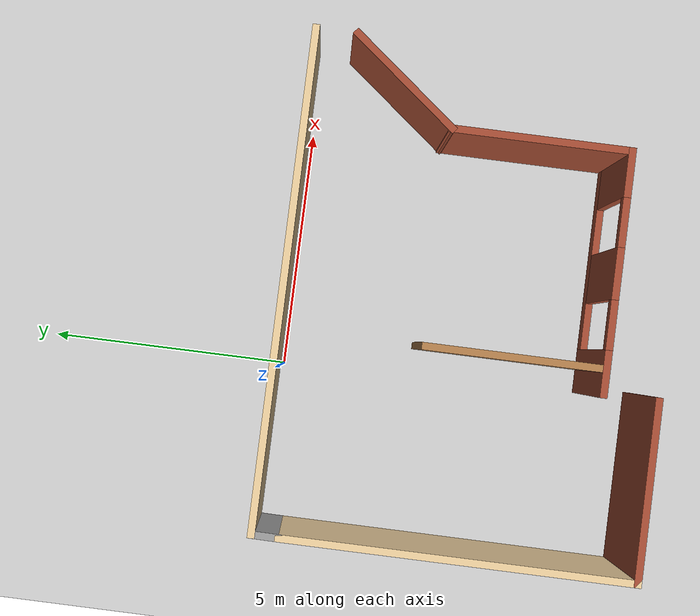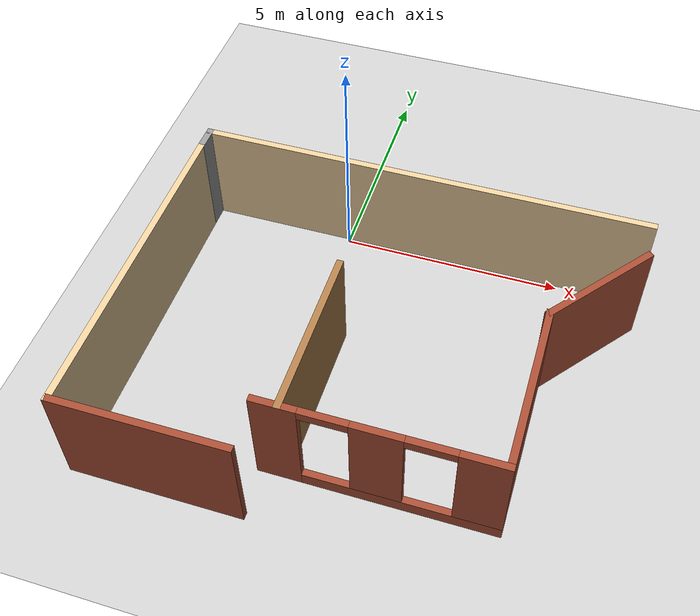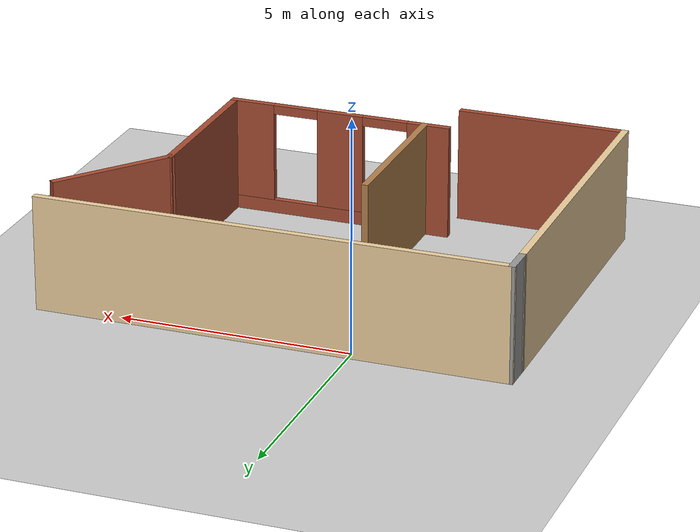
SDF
<sdf version="1.6">
 <world name="default">
  <model name="ground_plane">
   <static>1</static>
   <link name="link">
    <collision name="collision">
     <geometry><plane><normal>0 0 1</normal><size>100 100</size></plane></geometry>
     <surface><friction><ode><mu>100</mu><mu2>50</mu2></ode></friction></surface>
    </collision>
    <visual name="visual">
     <cast_shadows>0</cast_shadows>
     <geometry><plane><normal>0 0 1</normal><size>100 100</size></plane></geometry>
     <material>
      <script><uri>file://media/materials/scripts/gazebo.material</uri><name>Gazebo/Grey</name></script>
     </material>
    </visual>
   </link>
  </model>
  <model name="Number26">
   <link name="Wall_13">
    <pose>-5.06482 3.54964 0 0 -0 1.56115</pose>
    <visual name="Wall_13_Visual">
     <pose>0 0 1.25 0 -0 0</pose>
     <geometry><box><size>0.692161 0.15 2.5</size></box></geometry>
     <material>
      <script><uri>file://media/materials/scripts/gazebo.material</uri><name>Gazebo/Grey</name></script>
      <ambient>1 1 1 1</ambient>
      <shader type="pixel"/>
      <diffuse>0.7 0.7 0.7 1</diffuse>
      <specular>0.01 0.01 0.01 1</specular>
      <emissive>0 0 0 1</emissive>
     </material>
     <meta><layer>0</layer></meta>
    </visual>
    <collision name="Wall_13_Collision">
     <pose>0 0 1.25 0 -0 0</pose>
     <geometry><box><size>0.692161 0.15 2.5</size></box></geometry>
     <surface>
      <friction>
       <ode><mu>1</mu><mu2>1</mu2><fdir1>0 0 0</fdir1><slip1>0</slip1><slip2>0</slip2></ode>
       <torsional>
        <coefficient>1</coefficient>
        <patch_radius>0</patch_radius>
        <surface_radius>0</surface_radius>
        <use_patch_radius>1</use_patch_radius>
        <ode><slip>0</slip></ode>
       </torsional>
      </friction>
      <bounce><restitution_coefficient>0</restitution_coefficient><threshold>1e+06</threshold></bounce>
      <contact>
       <collide_without_contact>0</collide_without_contact>
       <collide_without_contact_bitmask>1</collide_without_contact_bitmask>
       <collide_bitmask>1</collide_bitmask>
       <ode>
        <soft_cfm>0</soft_cfm>
        <soft_erp>0.2</soft_erp>
        <kp>1e+13</kp>
        <kd>1</kd>
        <max_vel>0.01</max_vel>
        <min_depth>0</min_depth>
       </ode>
       <bullet>
        <split_impulse>1</split_impulse>
        <split_impulse_penetration_threshold>-0.01</split_impulse_penetration_threshold>
        <soft_cfm>0</soft_cfm>
        <soft_erp>0.2</soft_erp>
        <kp>1e+13</kp>
        <kd>1</kd>
       </bullet>
      </contact>
     </surface>
    </collision>
   </link>
   <link name="Wall_2">
    <pose>-5.06743 -0.271428 0 0 0 -1.5708</pose>
    <visual name="Wall_2_Visual">
     <pose>0 0 1.25 0 -0 0</pose>
     <geometry><box><size>7.25 0.15 2.5</size></box></geometry>
     <material>
      <script><uri>file://media/materials/scripts/gazebo.material</uri><name>Gazebo/Grey</name></script>
      <ambient>0.921569 0.807843 0.615686 1</ambient>
      <shader type="pixel"/>
      <diffuse>0.7 0.7 0.7 1</diffuse>
      <specular>0.01 0.01 0.01 1</specular>
      <emissive>0 0 0 1</emissive>
     </material>
     <meta><layer>0</layer></meta>
    </visual>
    <collision name="Wall_2_Collision">
     <pose>0 0 1.25 0 -0 0</pose>
     <geometry><box><size>7.25 0.15 2.5</size></box></geometry>
     <surface>
      <friction>
       <ode><mu>1</mu><mu2>1</mu2><fdir1>0 0 0</fdir1><slip1>0</slip1><slip2>0</slip2></ode>
       <torsional>
        <coefficient>1</coefficient>
        <patch_radius>0</patch_radius>
        <surface_radius>0</surface_radius>
        <use_patch_radius>1</use_patch_radius>
        <ode><slip>0</slip></ode>
       </torsional>
      </friction>
      <bounce><restitution_coefficient>0</restitution_coefficient><threshold>1e+06</threshold></bounce>
      <contact>
       <collide_without_contact>0</collide_without_contact>
       <collide_without_contact_bitmask>1</collide_without_contact_bitmask>
       <collide_bitmask>1</collide_bitmask>
       <ode>
        <soft_cfm>0</soft_cfm>
        <soft_erp>0.2</soft_erp>
        <kp>1e+13</kp>
        <kd>1</kd>
        <max_vel>0.01</max_vel>
        <min_depth>0</min_depth>
       </ode>
       <bullet>
        <split_impulse>1</split_impulse>
        <split_impulse_penetration_threshold>-0.01</split_impulse_penetration_threshold>
        <soft_cfm>0</soft_cfm>
        <soft_erp>0.2</soft_erp>
        <kp>1e+13</kp>
        <kd>1</kd>
       </bullet>
      </contact>
     </surface>
    </collision>
   </link>
   <link name="Wall_20">
    <pose>-0.96743 -0.921428 0 0 0 -1.5708</pose>
    <visual name="Wall_20_Visual">
     <pose>0 0 1.25 0 -0 0</pose>
     <geometry><box><size>3.75 0.15 2.5</size></box></geometry>
     <material>
      <script><uri>file://media/materials/scripts/gazebo.material</uri><name>Gazebo/Wood</name></script>
      <ambient>0.921569 0.807843 0.615686 1</ambient>
      <shader type="pixel"/>
      <diffuse>1 1 1 1</diffuse>
      <specular>0.2 0.2 0.2 1</specular>
      <emissive>0 0 0 1</emissive>
     </material>
     <meta><layer>0</layer></meta>
    </visual>
    <collision name="Wall_20_Collision">
     <pose>0 0 1.25 0 -0 0</pose>
     <geometry><box><size>3.75 0.15 2.5</size></box></geometry>
     <surface>
      <friction>
       <ode><mu>1</mu><mu2>1</mu2><fdir1>0 0 0</fdir1><slip1>0</slip1><slip2>0</slip2></ode>
       <torsional>
        <coefficient>1</coefficient>
        <patch_radius>0</patch_radius>
        <surface_radius>0</surface_radius>
        <use_patch_radius>1</use_patch_radius>
        <ode><slip>0</slip></ode>
       </torsional>
      </friction>
      <bounce><restitution_coefficient>0</restitution_coefficient><threshold>1e+06</threshold></bounce>
      <contact>
       <collide_without_contact>0</collide_without_contact>
       <collide_without_contact_bitmask>1</collide_without_contact_bitmask>
       <collide_bitmask>1</collide_bitmask>
       <ode>
        <soft_cfm>0</soft_cfm>
        <soft_erp>0.2</soft_erp>
        <kp>1e+13</kp>
        <kd>1</kd>
        <max_vel>0.01</max_vel>
        <min_depth>0</min_depth>
       </ode>
       <bullet>
        <split_impulse>1</split_impulse>
        <split_impulse_penetration_threshold>-0.01</split_impulse_penetration_threshold>
        <soft_cfm>0</soft_cfm>
        <soft_erp>0.2</soft_erp>
        <kp>1e+13</kp>
        <kd>1</kd>
       </bullet>
      </contact>
     </surface>
    </collision>
   </link>
   <link name="Wall_3">
    <pose>-3.26743 -3.82143 0 0 -0 0</pose>
    <visual name="Wall_3_Visual">
     <pose>0 0 1.25 0 -0 0</pose>
     <geometry><box><size>3.75 0.15 2.5</size></box></geometry>
     <material>
      <script><uri>file://media/materials/scripts/gazebo.material</uri><name>Gazebo/Bricks</name></script>
      <ambient>1 1 1 1</ambient>
      <shader type="pixel"/>
      <diffuse>1 1 1 1</diffuse>
      <specular>0.2 0.2 0.2 1</specular>
      <emissive>0 0 0 1</emissive>
     </material>
     <meta><layer>0</layer></meta>
    </visual>
    <collision name="Wall_3_Collision">
     <pose>0 0 1.25 0 -0 0</pose>
     <geometry><box><size>3.75 0.15 2.5</size></box></geometry>
     <surface>
      <friction>
       <ode><mu>1</mu><mu2>1</mu2><fdir1>0 0 0</fdir1><slip1>0</slip1><slip2>0</slip2></ode>
       <torsional>
        <coefficient>1</coefficient>
        <patch_radius>0</patch_radius>
        <surface_radius>0</surface_radius>
        <use_patch_radius>1</use_patch_radius>
        <ode><slip>0</slip></ode>
       </torsional>
      </friction>
      <bounce><restitution_coefficient>0</restitution_coefficient><threshold>1e+06</threshold></bounce>
      <contact>
       <collide_without_contact>0</collide_without_contact>
       <collide_without_contact_bitmask>1</collide_without_contact_bitmask>
       <collide_bitmask>1</collide_bitmask>
       <ode>
        <soft_cfm>0</soft_cfm>
        <soft_erp>0.2</soft_erp>
        <kp>1e+13</kp>
        <kd>1</kd>
        <max_vel>0.01</max_vel>
        <min_depth>0</min_depth>
       </ode>
       <bullet>
        <split_impulse>1</split_impulse>
        <split_impulse_penetration_threshold>-0.01</split_impulse_penetration_threshold>
        <soft_cfm>0</soft_cfm>
        <soft_erp>0.2</soft_erp>
        <kp>1e+13</kp>
        <kd>1</kd>
       </bullet>
      </contact>
     </surface>
    </collision>
   </link>
   <link name="Wall_5">
    <pose>0.95757 -2.72143 0 0 -0 0</pose>
    <visual name="Wall_5_Visual_0">
     <pose>-2.02406 0 1.25 0 -0 0</pose>
     <geometry><box><size>0.951877 0.15 2.5</size></box></geometry>
     <material>
      <script><uri>file://media/materials/scripts/gazebo.material</uri><name>Gazebo/Bricks</name></script>
      <ambient>1 1 1 1</ambient>
      <shader type="pixel"/>
      <diffuse>1 1 1 1</diffuse>
      <specular>0.2 0.2 0.2 1</specular>
      <emissive>0 0 0 1</emissive>
     </material>
     <meta><layer>0</layer></meta>
    </visual>
    <visual name="Wall_5_Visual_1">
     <pose>0.475938 0 0.15 0 -0 0</pose>
     <geometry><box><size>4.04812 0.15 0.3</size></box></geometry>
     <material>
      <script><uri>file://media/materials/scripts/gazebo.material</uri><name>Gazebo/Bricks</name></script>
      <ambient>1 1 1 1</ambient>
      <shader type="pixel"/>
      <diffuse>1 1 1 1</diffuse>
      <specular>0.2 0.2 0.2 1</specular>
      <emissive>0 0 0 1</emissive>
     </material>
     <meta><layer>0</layer></meta>
    </visual>
    <visual name="Wall_5_Visual_2">
     <pose>-0.024954 0 1.4 0 -0 0</pose>
     <geometry><box><size>1.04634 0.15 2.2</size></box></geometry>
     <material>
      <script><uri>file://media/materials/scripts/gazebo.material</uri><name>Gazebo/Bricks</name></script>
      <ambient>1 1 1 1</ambient>
      <shader type="pixel"/>
      <diffuse>1 1 1 1</diffuse>
      <specular>0.2 0.2 0.2 1</specular>
      <emissive>0 0 0 1</emissive>
     </material>
     <meta><layer>0</layer></meta>
    </visual>
    <visual name="Wall_5_Visual_3">
     <pose>1.99911 0 1.4 0 -0 0</pose>
     <geometry><box><size>1.00179 0.15 2.2</size></box></geometry>
     <material>
      <script><uri>file://media/materials/scripts/gazebo.material</uri><name>Gazebo/Bricks</name></script>
      <ambient>1 1 1 1</ambient>
      <shader type="pixel"/>
      <diffuse>1 1 1 1</diffuse>
      <specular>0.2 0.2 0.2 1</specular>
      <emissive>0 0 0 1</emissive>
     </material>
     <meta><layer>0</layer></meta>
    </visual>
    <visual name="Wall_5_Visual_4">
     <pose>-1.04812 0 2.4 0 -0 0</pose>
     <geometry><box><size>1 0.15 0.2</size></box></geometry>
     <material>
      <script><uri>file://media/materials/scripts/gazebo.material</uri><name>Gazebo/Bricks</name></script>
      <ambient>1 1 1 1</ambient>
      <shader type="pixel"/>
      <diffuse>1 1 1 1</diffuse>
      <specular>0.2 0.2 0.2 1</specular>
      <emissive>0 0 0 1</emissive>
     </material>
     <meta><layer>0</layer></meta>
    </visual>
    <visual name="Wall_5_Visual_5">
     <pose>0.998214 0 2.4 0 -0 0</pose>
     <geometry><box><size>1 0.15 0.2</size></box></geometry>
     <material>
      <script><uri>file://media/materials/scripts/gazebo.material</uri><name>Gazebo/Bricks</name></script>
      <ambient>1 1 1 1</ambient>
      <shader type="pixel"/>
      <diffuse>1 1 1 1</diffuse>
      <specular>0.2 0.2 0.2 1</specular>
      <emissive>0 0 0 1</emissive>
     </material>
     <meta><layer>0</layer></meta>
    </visual>
    <collision name="Wall_5_Collision_0">
     <pose>-2.02406 0 1.25 0 -0 0</pose>
     <geometry><box><size>0.951877 0.15 2.5</size></box></geometry>
     <surface>
      <friction>
       <ode><mu>1</mu><mu2>1</mu2><fdir1>0 0 0</fdir1><slip1>0</slip1><slip2>0</slip2></ode>
       <torsional>
        <coefficient>1</coefficient>
        <patch_radius>0</patch_radius>
        <surface_radius>0</surface_radius>
        <use_patch_radius>1</use_patch_radius>
        <ode><slip>0</slip></ode>
       </torsional>
      </friction>
      <bounce><restitution_coefficient>0</restitution_coefficient><threshold>1e+06</threshold></bounce>
      <contact>
       <collide_without_contact>0</collide_without_contact>
       <collide_without_contact_bitmask>1</collide_without_contact_bitmask>
       <collide_bitmask>1</collide_bitmask>
       <ode>
        <soft_cfm>0</soft_cfm>
        <soft_erp>0.2</soft_erp>
        <kp>1e+13</kp>
        <kd>1</kd>
        <max_vel>0.01</max_vel>
        <min_depth>0</min_depth>
       </ode>
       <bullet>
        <split_impulse>1</split_impulse>
        <split_impulse_penetration_threshold>-0.01</split_impulse_penetration_threshold>
        <soft_cfm>0</soft_cfm>
        <soft_erp>0.2</soft_erp>
        <kp>1e+13</kp>
        <kd>1</kd>
       </bullet>
      </contact>
     </surface>
    </collision>
    <collision name="Wall_5_Collision_1">
     <pose>0.475938 0 0.15 0 -0 0</pose>
     <geometry><box><size>4.04812 0.15 0.3</size></box></geometry>
     <surface>
      <friction>
       <ode><mu>1</mu><mu2>1</mu2><fdir1>0 0 0</fdir1><slip1>0</slip1><slip2>0</slip2></ode>
       <torsional>
        <coefficient>1</coefficient>
        <patch_radius>0</patch_radius>
        <surface_radius>0</surface_radius>
        <use_patch_radius>1</use_patch_radius>
        <ode><slip>0</slip></ode>
       </torsional>
      </friction>
      <bounce><restitution_coefficient>0</restitution_coefficient><threshold>1e+06</threshold></bounce>
      <contact>
       <collide_without_contact>0</collide_without_contact>
       <collide_without_contact_bitmask>1</collide_without_contact_bitmask>
       <collide_bitmask>1</collide_bitmask>
       <ode>
        <soft_cfm>0</soft_cfm>
        <soft_erp>0.2</soft_erp>
        <kp>1e+13</kp>
        <kd>1</kd>
        <max_vel>0.01</max_vel>
        <min_depth>0</min_depth>
       </ode>
       <bullet>
        <split_impulse>1</split_impulse>
        <split_impulse_penetration_threshold>-0.01</split_impulse_penetration_threshold>
        <soft_cfm>0</soft_cfm>
        <soft_erp>0.2</soft_erp>
        <kp>1e+13</kp>
        <kd>1</kd>
       </bullet>
      </contact>
     </surface>
    </collision>
    <collision name="Wall_5_Collision_2">
     <pose>-0.024954 0 1.4 0 -0 0</pose>
     <geometry><box><size>1.04634 0.15 2.2</size></box></geometry>
     <surface>
      <friction>
       <ode><mu>1</mu><mu2>1</mu2><fdir1>0 0 0</fdir1><slip1>0</slip1><slip2>0</slip2></ode>
       <torsional>
        <coefficient>1</coefficient>
        <patch_radius>0</patch_radius>
        <surface_radius>0</surface_radius>
        <use_patch_radius>1</use_patch_radius>
        <ode><slip>0</slip></ode>
       </torsional>
      </friction>
      <bounce><restitution_coefficient>0</restitution_coefficient><threshold>1e+06</threshold></bounce>
      <contact>
       <collide_without_contact>0</collide_without_contact>
       <collide_without_contact_bitmask>1</collide_without_contact_bitmask>
       <collide_bitmask>1</collide_bitmask>
       <ode>
        <soft_cfm>0</soft_cfm>
        <soft_erp>0.2</soft_erp>
        <kp>1e+13</kp>
        <kd>1</kd>
        <max_vel>0.01</max_vel>
        <min_depth>0</min_depth>
       </ode>
       <bullet>
        <split_impulse>1</split_impulse>
        <split_impulse_penetration_threshold>-0.01</split_impulse_penetration_threshold>
        <soft_cfm>0</soft_cfm>
        <soft_erp>0.2</soft_erp>
        <kp>1e+13</kp>
        <kd>1</kd>
       </bullet>
      </contact>
     </surface>
    </collision>
    <collision name="Wall_5_Collision_3">
     <pose>1.99911 0 1.4 0 -0 0</pose>
     <geometry><box><size>1.00179 0.15 2.2</size></box></geometry>
     <surface>
      <friction>
       <ode><mu>1</mu><mu2>1</mu2><fdir1>0 0 0</fdir1><slip1>0</slip1><slip2>0</slip2></ode>
       <torsional>
        <coefficient>1</coefficient>
        <patch_radius>0</patch_radius>
        <surface_radius>0</surface_radius>
        <use_patch_radius>1</use_patch_radius>
        <ode><slip>0</slip></ode>
       </torsional>
      </friction>
      <bounce><restitution_coefficient>0</restitution_coefficient><threshold>1e+06</threshold></bounce>
      <contact>
       <collide_without_contact>0</collide_without_contact>
       <collide_without_contact_bitmask>1</collide_without_contact_bitmask>
       <collide_bitmask>1</collide_bitmask>
       <ode>
        <soft_cfm>0</soft_cfm>
        <soft_erp>0.2</soft_erp>
        <kp>1e+13</kp>
        <kd>1</kd>
        <max_vel>0.01</max_vel>
        <min_depth>0</min_depth>
       </ode>
       <bullet>
        <split_impulse>1</split_impulse>
        <split_impulse_penetration_threshold>-0.01</split_impulse_penetration_threshold>
        <soft_cfm>0</soft_cfm>
        <soft_erp>0.2</soft_erp>
        <kp>1e+13</kp>
        <kd>1</kd>
       </bullet>
      </contact>
     </surface>
    </collision>
    <collision name="Wall_5_Collision_4">
     <pose>-1.04812 0 2.4 0 -0 0</pose>
     <geometry><box><size>1 0.15 0.2</size></box></geometry>
     <surface>
      <friction>
       <ode><mu>1</mu><mu2>1</mu2><fdir1>0 0 0</fdir1><slip1>0</slip1><slip2>0</slip2></ode>
       <torsional>
        <coefficient>1</coefficient>
        <patch_radius>0</patch_radius>
        <surface_radius>0</surface_radius>
        <use_patch_radius>1</use_patch_radius>
        <ode><slip>0</slip></ode>
       </torsional>
      </friction>
      <bounce><restitution_coefficient>0</restitution_coefficient><threshold>1e+06</threshold></bounce>
      <contact>
       <collide_without_contact>0</collide_without_contact>
       <collide_without_contact_bitmask>1</collide_without_contact_bitmask>
       <collide_bitmask>1</collide_bitmask>
       <ode>
        <soft_cfm>0</soft_cfm>
        <soft_erp>0.2</soft_erp>
        <kp>1e+13</kp>
        <kd>1</kd>
        <max_vel>0.01</max_vel>
        <min_depth>0</min_depth>
       </ode>
       <bullet>
        <split_impulse>1</split_impulse>
        <split_impulse_penetration_threshold>-0.01</split_impulse_penetration_threshold>
        <soft_cfm>0</soft_cfm>
        <soft_erp>0.2</soft_erp>
        <kp>1e+13</kp>
        <kd>1</kd>
       </bullet>
      </contact>
     </surface>
    </collision>
    <collision name="Wall_5_Collision_5">
     <pose>0.998214 0 2.4 0 -0 0</pose>
     <geometry><box><size>1 0.15 0.2</size></box></geometry>
     <surface>
      <friction>
       <ode><mu>1</mu><mu2>1</mu2><fdir1>0 0 0</fdir1><slip1>0</slip1><slip2>0</slip2></ode>
       <torsional>
        <coefficient>1</coefficient>
        <patch_radius>0</patch_radius>
        <surface_radius>0</surface_radius>
        <use_patch_radius>1</use_patch_radius>
        <ode><slip>0</slip></ode>
       </torsional>
      </friction>
      <bounce><restitution_coefficient>0</restitution_coefficient><threshold>1e+06</threshold></bounce>
      <contact>
       <collide_without_contact>0</collide_without_contact>
       <collide_without_contact_bitmask>1</collide_without_contact_bitmask>
       <collide_bitmask>1</collide_bitmask>
       <ode>
        <soft_cfm>0</soft_cfm>
        <soft_erp>0.2</soft_erp>
        <kp>1e+13</kp>
        <kd>1</kd>
        <max_vel>0.01</max_vel>
        <min_depth>0</min_depth>
       </ode>
       <bullet>
        <split_impulse>1</split_impulse>
        <split_impulse_penetration_threshold>-0.01</split_impulse_penetration_threshold>
        <soft_cfm>0</soft_cfm>
        <soft_erp>0.2</soft_erp>
        <kp>1e+13</kp>
        <kd>1</kd>
       </bullet>
      </contact>
     </surface>
    </collision>
   </link>
   <link name="Wall_6">
    <pose>3.38257 -0.921428 0 0 -0 1.5708</pose>
    <visual name="Wall_6_Visual">
     <pose>0 0 1.25 0 -0 0</pose>
     <geometry><box><size>3.75 0.15 2.5</size></box></geometry>
     <material>
      <script><uri>file://media/materials/scripts/gazebo.material</uri><name>Gazebo/Bricks</name></script>
      <ambient>1 1 1 1</ambient>
      <shader type="pixel"/>
      <diffuse>1 1 1 1</diffuse>
      <specular>0.2 0.2 0.2 1</specular>
      <emissive>0 0 0 1</emissive>
     </material>
     <meta><layer>0</layer></meta>
    </visual>
    <collision name="Wall_6_Collision">
     <pose>0 0 1.25 0 -0 0</pose>
     <geometry><box><size>3.75 0.15 2.5</size></box></geometry>
     <surface>
      <friction>
       <ode><mu>1</mu><mu2>1</mu2><fdir1>0 0 0</fdir1><slip1>0</slip1><slip2>0</slip2></ode>
       <torsional>
        <coefficient>1</coefficient>
        <patch_radius>0</patch_radius>
        <surface_radius>0</surface_radius>
        <use_patch_radius>1</use_patch_radius>
        <ode><slip>0</slip></ode>
       </torsional>
      </friction>
      <bounce><restitution_coefficient>0</restitution_coefficient><threshold>1e+06</threshold></bounce>
      <contact>
       <collide_without_contact>0</collide_without_contact>
       <collide_without_contact_bitmask>1</collide_without_contact_bitmask>
       <collide_bitmask>1</collide_bitmask>
       <ode>
        <soft_cfm>0</soft_cfm>
        <soft_erp>0.2</soft_erp>
        <kp>1e+13</kp>
        <kd>1</kd>
        <max_vel>0.01</max_vel>
        <min_depth>0</min_depth>
       </ode>
       <bullet>
        <split_impulse>1</split_impulse>
        <split_impulse_penetration_threshold>-0.01</split_impulse_penetration_threshold>
        <soft_cfm>0</soft_cfm>
        <soft_erp>0.2</soft_erp>
        <kp>1e+13</kp>
        <kd>1</kd>
       </bullet>
      </contact>
     </surface>
    </collision>
   </link>
   <link name="Wall_7">
    <pose>4.21018 1.92464 0 0 -0 0.901465</pose>
    <visual name="Wall_7_Visual">
     <pose>0 0 1.25 0 -0 0</pose>
     <geometry><box><size>2.81773 0.15 2.5</size></box></geometry>
     <material>
      <script><uri>file://media/materials/scripts/gazebo.material</uri><name>Gazebo/Bricks</name></script>
      <ambient>1 1 1 1</ambient>
      <shader type="pixel"/>
      <diffuse>1 1 1 1</diffuse>
      <specular>0.2 0.2 0.2 1</specular>
      <emissive>0 0 0 1</emissive>
     </material>
     <meta><layer>0</layer></meta>
    </visual>
    <collision name="Wall_7_Collision">
     <pose>0 0 1.25 0 -0 0</pose>
     <geometry><box><size>2.81773 0.15 2.5</size></box></geometry>
     <surface>
      <friction>
       <ode><mu>1</mu><mu2>1</mu2><fdir1>0 0 0</fdir1><slip1>0</slip1><slip2>0</slip2></ode>
       <torsional>
        <coefficient>1</coefficient>
        <patch_radius>0</patch_radius>
        <surface_radius>0</surface_radius>
        <use_patch_radius>1</use_patch_radius>
        <ode><slip>0</slip></ode>
       </torsional>
      </friction>
      <bounce><restitution_coefficient>0</restitution_coefficient><threshold>1e+06</threshold></bounce>
      <contact>
       <collide_without_contact>0</collide_without_contact>
       <collide_without_contact_bitmask>1</collide_without_contact_bitmask>
       <collide_bitmask>1</collide_bitmask>
       <ode>
        <soft_cfm>0</soft_cfm>
        <soft_erp>0.2</soft_erp>
        <kp>1e+13</kp>
        <kd>1</kd>
        <max_vel>0.01</max_vel>
        <min_depth>0</min_depth>
       </ode>
       <bullet>
        <split_impulse>1</split_impulse>
        <split_impulse_penetration_threshold>-0.01</split_impulse_penetration_threshold>
        <soft_cfm>0</soft_cfm>
        <soft_erp>0.2</soft_erp>
        <kp>1e+13</kp>
        <kd>1</kd>
       </bullet>
      </contact>
     </surface>
    </collision>
   </link>
   <link name="Wall_9">
    <pose>-0.012202 3.82071 0 0 -0 3.14159</pose>
    <visual name="Wall_9_Visual">
     <pose>0 0 1.25 0 -0 0</pose>
     <geometry><box><size>10.25 0.15 2.5</size></box></geometry>
     <material>
      <script><uri>file://media/materials/scripts/gazebo.material</uri><name>Gazebo/Grey</name></script>
      <ambient>0.921569 0.807843 0.615686 1</ambient>
      <shader type="pixel"/>
      <diffuse>0.7 0.7 0.7 1</diffuse>
      <specular>0.01 0.01 0.01 1</specular>
      <emissive>0 0 0 1</emissive>
     </material>
     <meta><layer>0</layer></meta>
    </visual>
    <collision name="Wall_9_Collision">
     <pose>0 0 1.25 0 -0 0</pose>
     <geometry><box><size>10.25 0.15 2.5</size></box></geometry>
     <surface>
      <friction>
       <ode><mu>1</mu><mu2>1</mu2><fdir1>0 0 0</fdir1><slip1>0</slip1><slip2>0</slip2></ode>
       <torsional>
        <coefficient>1</coefficient>
        <patch_radius>0</patch_radius>
        <surface_radius>0</surface_radius>
        <use_patch_radius>1</use_patch_radius>
        <ode><slip>0</slip></ode>
       </torsional>
      </friction>
      <bounce><restitution_coefficient>0</restitution_coefficient><threshold>1e+06</threshold></bounce>
      <contact>
       <collide_without_contact>0</collide_without_contact>
       <collide_without_contact_bitmask>1</collide_without_contact_bitmask>
       <collide_bitmask>1</collide_bitmask>
       <ode>
        <soft_cfm>0</soft_cfm>
        <soft_erp>0.2</soft_erp>
        <kp>1e+13</kp>
        <kd>1</kd>
        <max_vel>0.01</max_vel>
        <min_depth>0</min_depth>
       </ode>
       <bullet>
        <split_impulse>1</split_impulse>
        <split_impulse_penetration_threshold>-0.01</split_impulse_penetration_threshold>
        <soft_cfm>0</soft_cfm>
        <soft_erp>0.2</soft_erp>
        <kp>1e+13</kp>
        <kd>1</kd>
       </bullet>
      </contact>
     </surface>
    </collision>
   </link>
   <static>1</static>
   <pose>1.69693 -3.66857 0 0 -0 0</pose>
  </model>
 </world>
</sdf>
